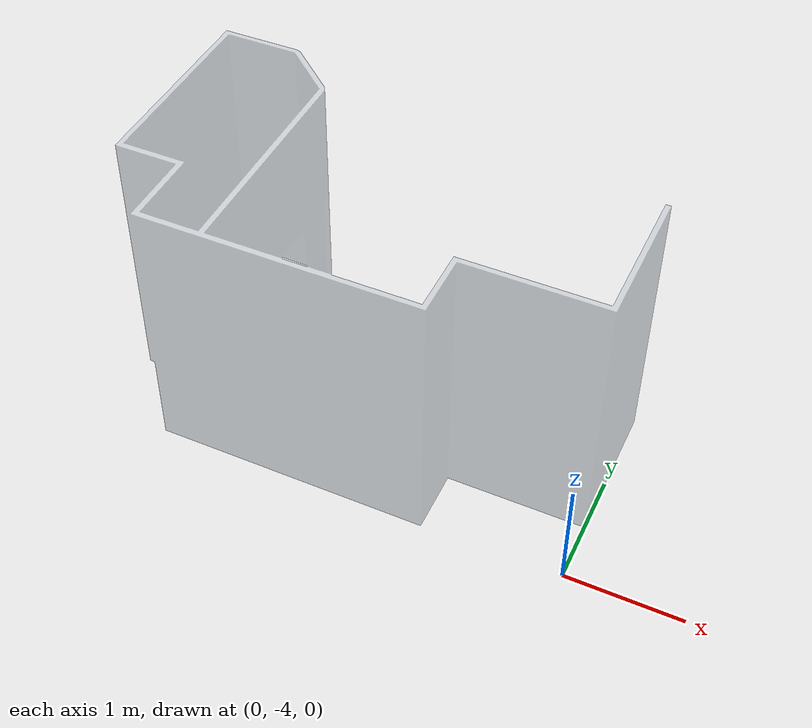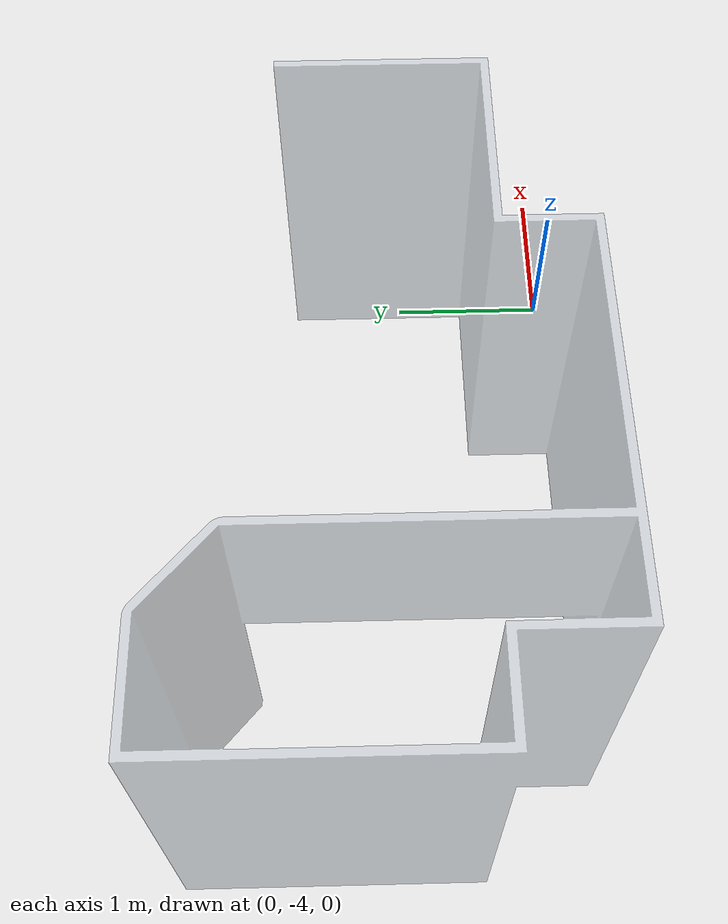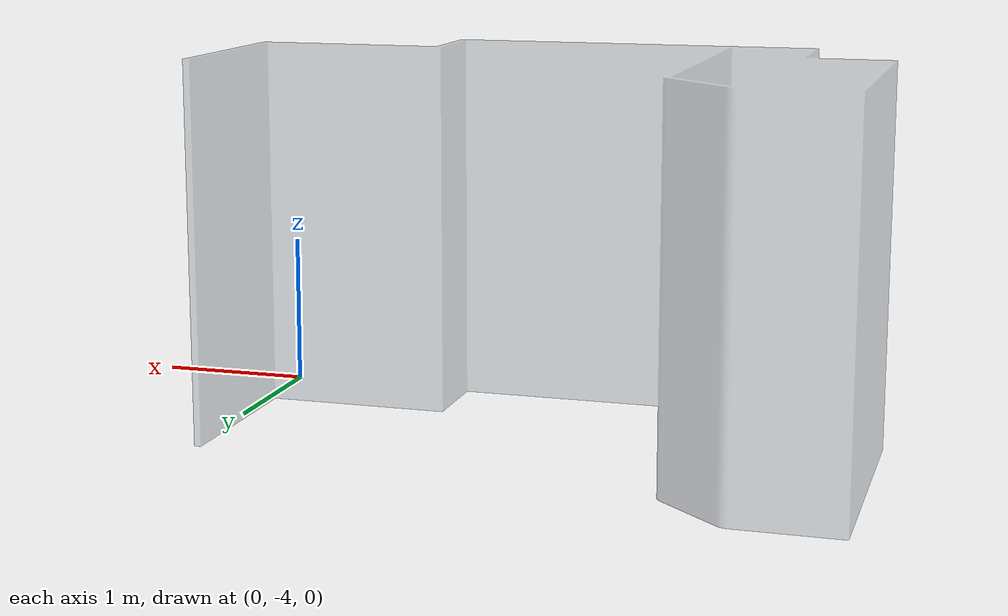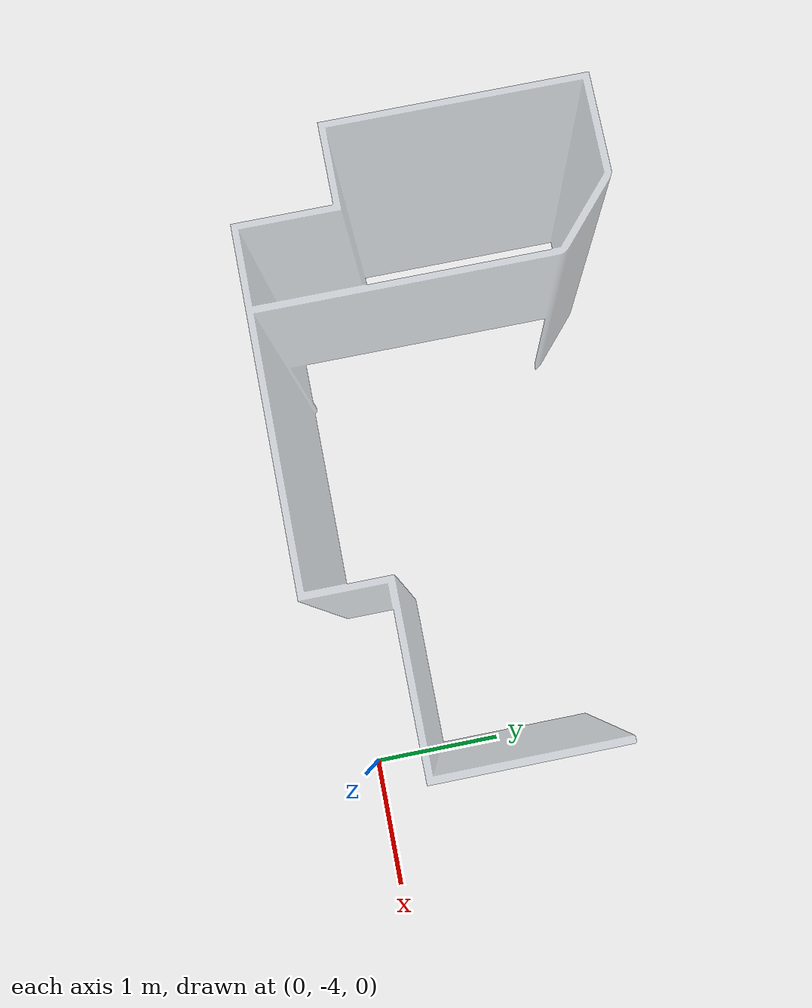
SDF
<?xml version="1.0"?>
<sdf version="1.9">
  <model name="carter_gauche">
    <static>true</static>
    <link name="carter_gauche_link">
      <visual name="carter_gauche_visual">
        <cast_shadows>false</cast_shadows>
        <geometry>
          <mesh>
            <uri>model://carter_gauche/meshes/carter_gauche.stl</uri>
          </mesh>
        </geometry>
        <transparency>0.5</transparency>
        <material>
          <ambient>0.72 0.76 0.80 0.5</ambient>
          <diffuse>0.72 0.76 0.80 0.5</diffuse>
          <specular>0.85 0.87 0.90 0.5</specular>
          <emissive>0.0 0.0 0.0 0.0</emissive>
        </material>
      </visual>
    </link>
  </model>
</sdf>
